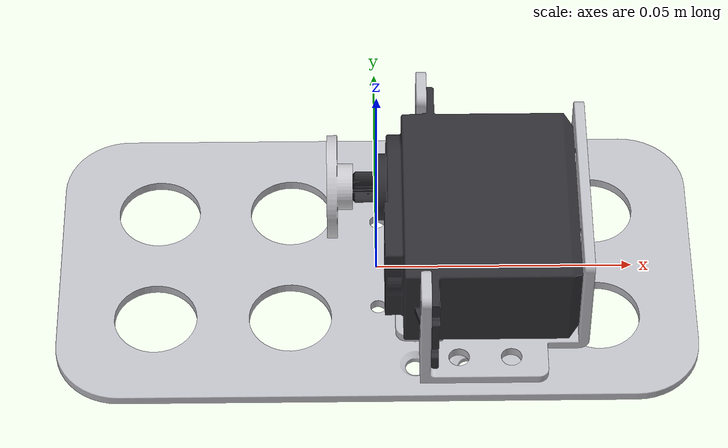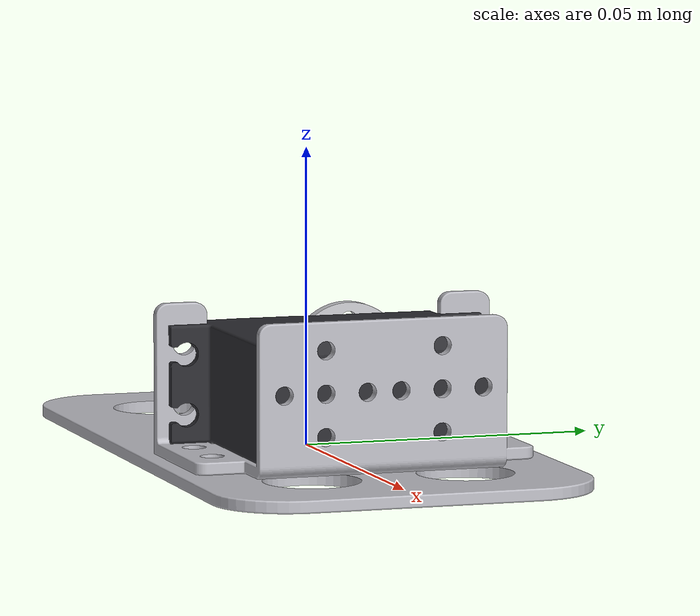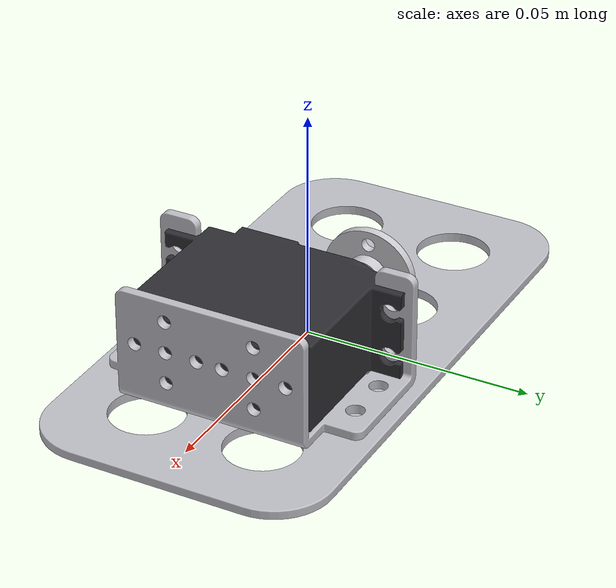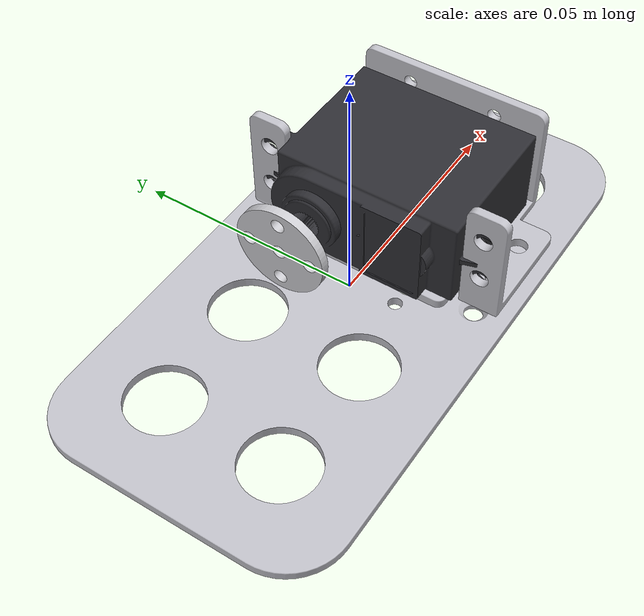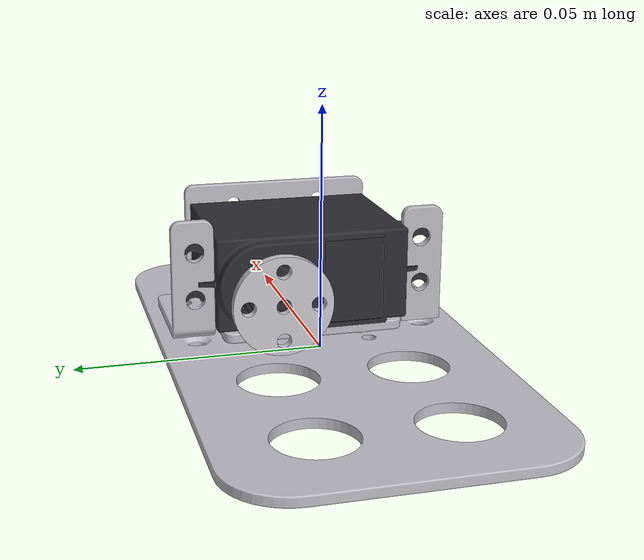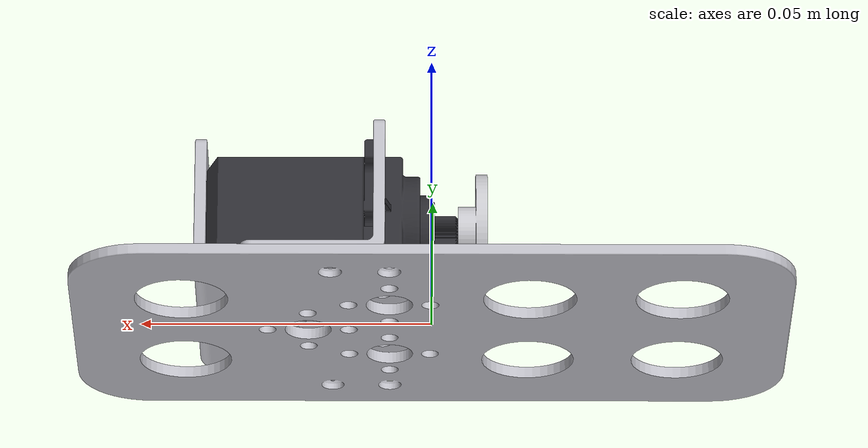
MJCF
<?xml version='1.0' encoding='utf-8'?>
<mujoco model="foot_assembly_left">
  <compiler angle="radian" meshdir=".." autolimits="true"/>
  <visual>
    <global offwidth="1024" offheight="1024"/>
    <headlight ambient="0.55 0.55 0.55" diffuse="0.6 0.6 0.6" specular="0.2 0.2 0.2"/>
  </visual>
  <default>
    <default class="visual"><geom type="mesh" contype="0" conaffinity="0" group="2" density="0"/></default>
    <default class="collision"><geom type="mesh" group="3"/></default>
  </default>
  <asset>
    <mesh name="foot" file="大脚板/脚板支架.STL" scale="0.001 0.001 0.001"/>
    <mesh name="multi" file="多功能/多功能支架.STL" scale="0.001 0.001 0.001"/>
    <mesh name="servo" file="舵机/舵机.STL" scale="0.001 0.001 0.001"/>
    <mesh name="horn" file="金属舵盘/金属舵盘.STL" scale="0.001 0.001 0.001"/>
    <material name="bracket" rgba="0.75 0.75 0.78 1"/>
    <material name="dark" rgba="0.18 0.18 0.20 1"/>
    <material name="horn" rgba="0.80 0.80 0.82 1"/>
  </asset>
  <worldbody>
    <body name="foot" pos="0 0 0">
      <!-- raw foot bbox 0..123.5 x 0..63.5 x 0..2 mm -->
      <geom name="foot_visual" mesh="foot" class="visual" material="bracket" pos="-0.06175 -0.03175 -0.001"/>
      <geom name="foot_collision" mesh="foot" class="collision" pos="-0.06175 -0.03175 -0.001" density="2700"/>

      <body name="multi" pos="0.022 0 0.0135" quat="0.70710678 0 0 0.70710678">
        <!-- raw multi bbox 0..58 x 0..37 x 0..25 mm; main plate face at Z=0 rests on foot top -->
        <geom name="multi_visual" mesh="multi" class="visual" material="bracket" pos="-0.029 -0.0185 -0.0125"/>
        <geom name="multi_collision" mesh="multi" class="collision" pos="-0.029 -0.0185 -0.0125" density="2700"/>
      </body>

      <body name="ankle_servo" pos="0.017 0 0.01275" quat="0 -0.7071068 0 0.7071068">
        <geom name="servo_visual" mesh="servo" class="visual" material="dark" pos="-0.009752 -0.027 -0.0215"/>
        <geom name="servo_collision" mesh="servo" class="collision" pos="-0.009752 -0.027 -0.0215" density="1600"/>
      </body>

      <body name="horn" pos="-0.007 0.010 0.01275" quat="0.5 0.5 0.5 -0.5">
        <geom name="horn_visual" mesh="horn" class="visual" material="horn" pos="-0.010 -0.0026 -0.010"/>
      </body>
    </body>
  </worldbody>
</mujoco>
